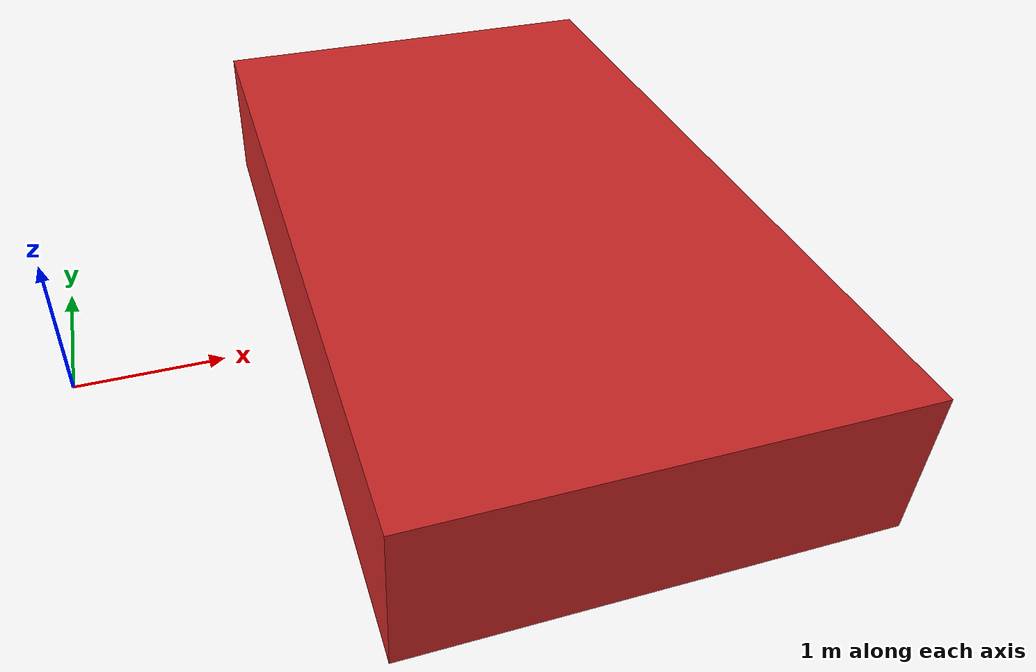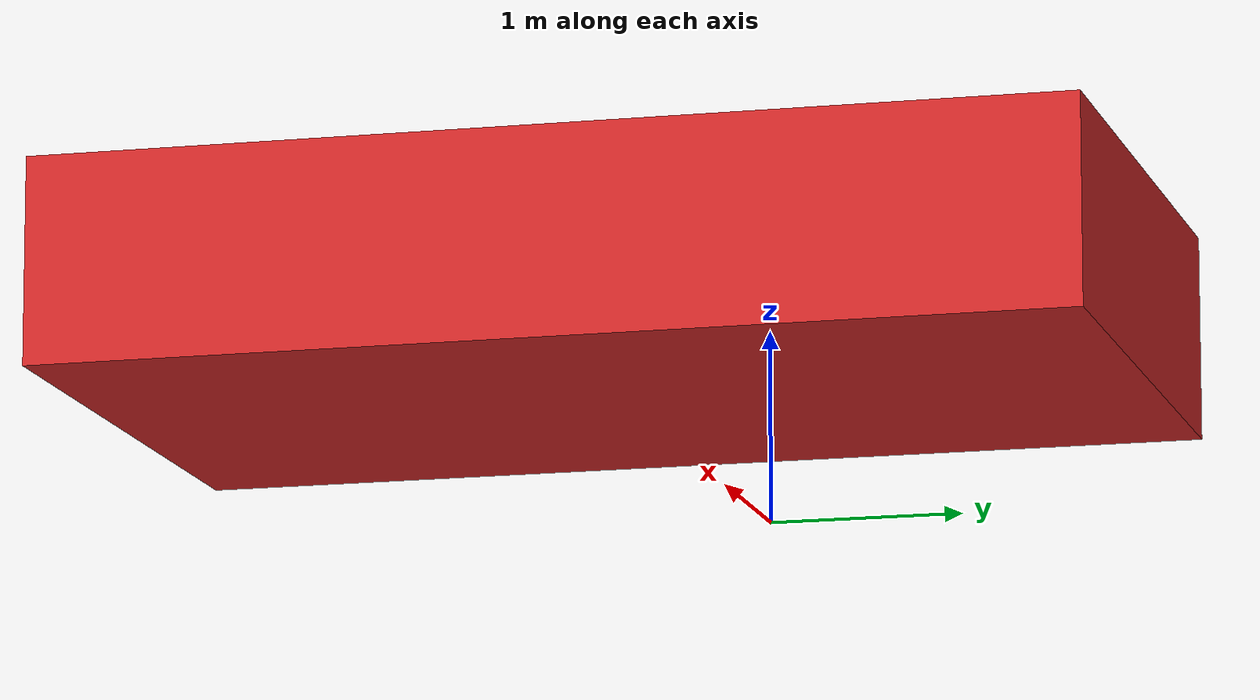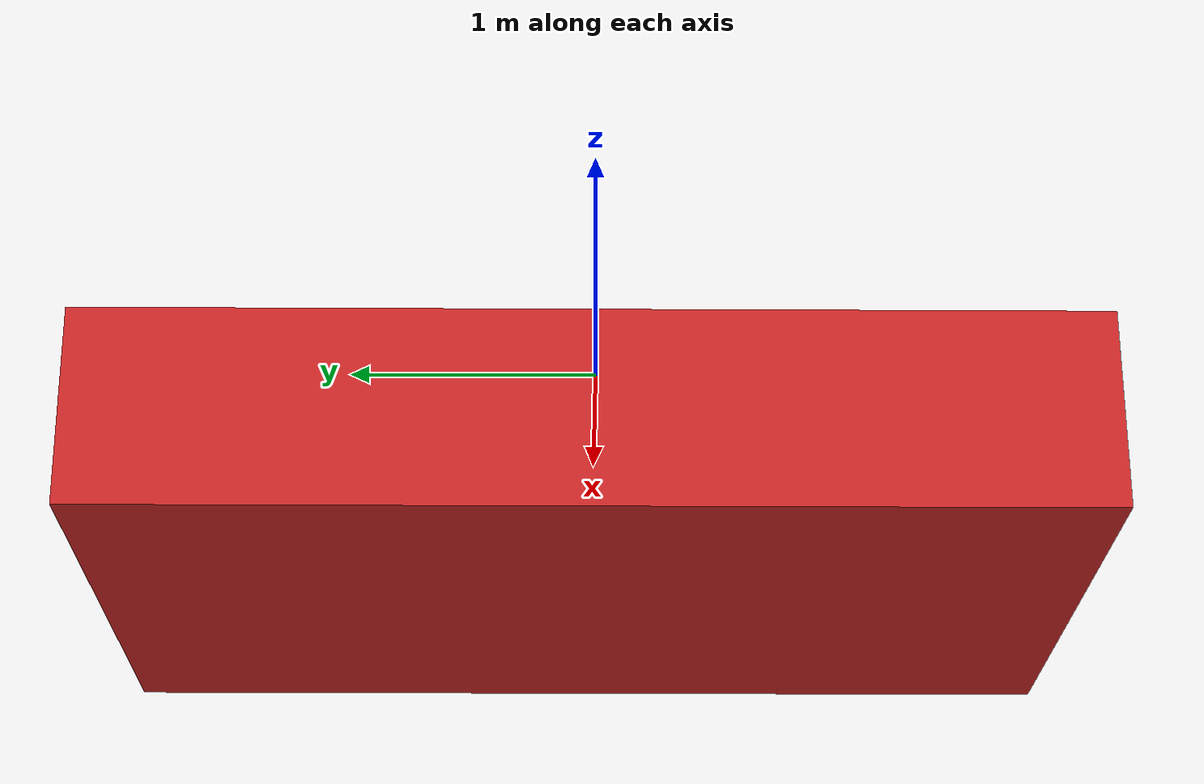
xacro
<?xml version="1.0"?>
<robot xmlns:xacro="http://www.ros.org/wiki/xacro">

    <link name="base">
    </link>

    <joint name="box" type="fixed">
        <parent link="base"/>
        <child link="box_link"/>
        <origin xyz="3 0 0.5"/>
    </joint>

    <link name="box_link">
        <visual>
            <origin xyz="0 0 0"/>
            <geometry>
                <box size="3 5 1"/>
            </geometry>
            <material name="red"/>
        </visual>
        <collision>
            <origin xyz="0 0 0" rpy="0 0 0"/>
            <geometry>
                <box size="3 5 1"/>
            </geometry>
        </collision>
        <xacro:inertial_box mass="1" x="0" y="0" z="0">
            <origin xyz="3 0 0.5" rpy="0 0 0"/>
        </xacro:inertial_box>
    </link>
</robot>
